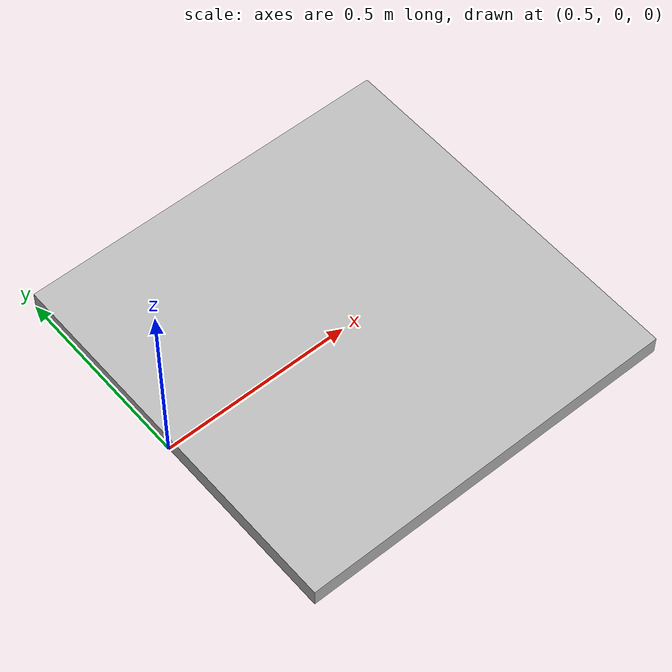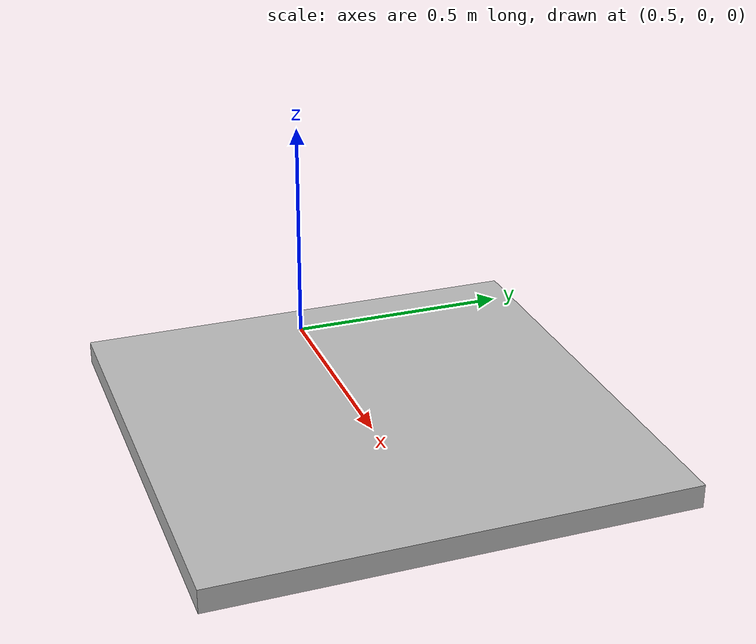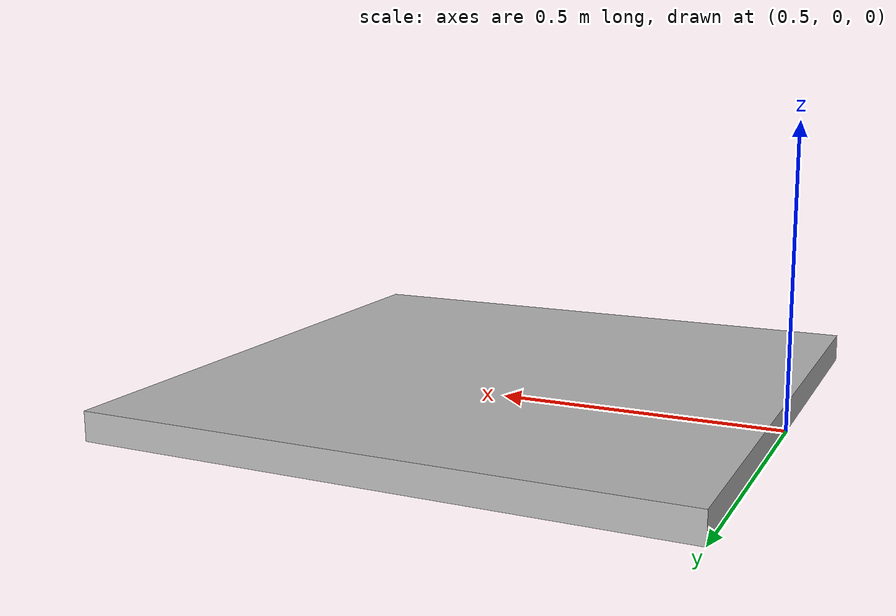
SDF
<?xml version="1.0"?>
<sdf version="1.4">

  <model name="box">
    <static>true</static>
    <link name='box'>
      <pose>1 0 0.025 0 0 0</pose>
      <collision name='collision'>
        <geometry>
          <box>
            <size>1.0 1.0 0.05</size>
          </box>
        </geometry>
      </collision>
      <visual name='visual'>
        <geometry>
          <box>
            <size>1.0 1.0 0.05</size>
          </box>
        </geometry>
      </visual>
    </link>
  </model>

</sdf>
